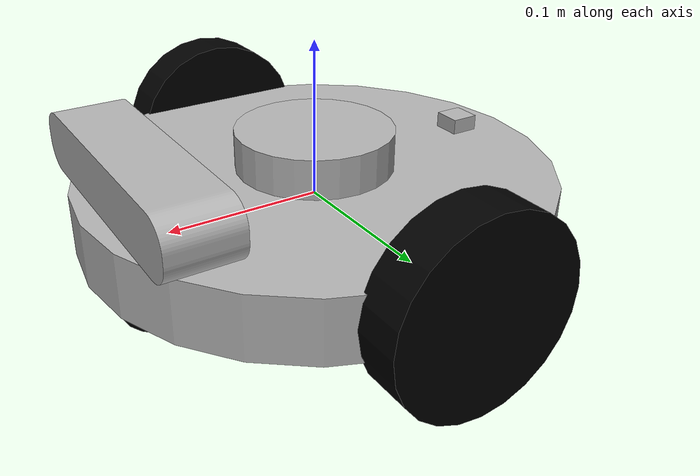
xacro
<?xml version="1.0"?>
<robot name="diff_robot" xmlns:xacro="http://ros.org/wiki/xacro">
<xacro:include filename="$(find diffdrive_description)/urdf/diff_drive_macro.xacro" />
<xacro:include filename="$(find diffdrive_description)/urdf/materials.xacro" />
<xacro:include filename="$(find diffdrive_description)/urdf/diff_drive.ros2control" />

    <xacro:property name="base_radius" value="0.15" />
    <xacro:property name="passive_wheel_height" value="0.04" />
    <xacro:property name="passive_wheel_radius" value="0.02" />
    <xacro:property name="passive_wheel_mass" value="0.5" />
    <xacro:property name="wheel_radius" value="0.06" />
    <xacro:property name="wheel_height" value="0.03" />
    <xacro:property name="wheel_mass" value="2.5" />
    <xacro:property name="body_color" value="Gazebo/Red" />
    <xacro:property name="wheel_color" value="Gazebo/Yellow" />
    <xacro:property name="sensor_color" value="Gazebo/Black" />

	<link name="base_link">
		<inertial>
				<inertia ixx="1.0" ixy="0.0" ixz="0.0" iyy="1.0" iyz="0.0" izz="1.0"/>
			<mass value="5" />
			<origin xyz="0 0 0" />
			<cylinder_inertia  m="5" r="${base_radius}" h="0.04" />
		</inertial>
		<visual>
			<origin xyz="0 0 0" rpy="0 0 0" />
			<geometry>
				<cylinder length="0.04" radius="${base_radius}" />
			</geometry>
			<material name="silver" />
		</visual>
		<collision>
			<origin xyz="0 0 0" rpy="0 0 0 " />
			<geometry>
				<cylinder length="0.04" radius="${base_radius}" />
			</geometry>
		</collision>
	</link>

	<xacro:passive_wheel_joint name="passive_wheel_front_joint"
		parent="base_link"
		child="passive_wheel_front_link">
		<origin xyz="0.115 0 -0.04" rpy="0 0 0"/>
	</xacro:passive_wheel_joint>

	<xacro:passive_wheel_link name="passive_wheel_front_link">
			<origin xyz="0 0 0" rpy="0 0 0" />
	</xacro:passive_wheel_link>

	<xacro:passive_wheel_joint
		name="passive_wheel_back_joint"
		parent="base_link"
		child="passive_wheel_back_link">
		<origin xyz="-0.115 0.0 -0.04" rpy="0 0 0"/>
	</xacro:passive_wheel_joint>

	<xacro:passive_wheel_link
		name="passive_wheel_back_link">
			<origin xyz="0 0 0 " rpy="0 0 0" />
	</xacro:passive_wheel_link>

	<xacro:wheel side="right" parent="base_link" translateX="0" translateY="-${base_radius}" />
	<xacro:wheel side="left" parent="base_link" translateX="0" translateY="${base_radius}" />

	<link name="lidar_link">
		 <visual>
      <origin xyz="0 0 0" rpy="0 0 0"/>
      <geometry>
			<cylinder radius="0.05" length="0.03" />
      </geometry>
      <material name="silver"/>
    </visual>

    <collision>
      <origin xyz="0 0 0.02" rpy="0 0 0"/>
      <geometry>
			 <cylinder radius="0.05" length="0.03" />
      </geometry>
    </collision>

    <inertial>
      <origin xyz="0 0 0" rpy="0 0 0"/>
      <mass value="1"/>
      <inertia
        ixx="1.0" ixy="0.0" ixz="0.0"
        iyy="1.0" iyz="0.0"
        izz="1.0"/>
      <cylinder_inertia  m="1" r="0.05" h="0.03" />
    </inertial>
	</link>

  <link name="camera_link">
   <visual>
      <origin xyz="0 0 0" rpy="0 0 0"/>
      <geometry>
			 <mesh filename="file://$(find diffdrive_description)/meshes/cam1.stl" scale="1.5 1.5 1.5"/>
      </geometry>
      <material name="silver"/>
    </visual>

    <collision>
      <origin xyz="0 0 0" rpy="0 0 0"/>
      <geometry>
			<box size="0.045 0.18 0.0375" />
      </geometry>
    </collision>

    <inertial>
      <origin xyz="0 0 0" rpy="0 0 0"/>
      <mass value="0.5"/>
      <inertia
        ixx="1.0" ixy="0.0" ixz="0.0"
        iyy="1.0" iyz="0.0"
        izz="1.0"/>
    </inertial>
	</link>

  <link name="imu_link">
   <visual>
      <origin xyz="0 0 0" rpy="0 0 0"/>
      <geometry>
			<box size="0.018 0.018 0.03" />
      </geometry>
      <material name="silver"/>
    </visual>

    <collision>
      <origin xyz="0 0 0" rpy="0 0 0"/>
      <geometry>
			<box size="0.018 0.018 0.03" />
      </geometry>
    </collision>

    <inertial>
      <origin xyz="0 0 0" rpy="0 0 0"/>
      <mass value="0.5"/>
      <inertia
        ixx="1.0" ixy="0.0" ixz="0.0"
        iyy="1.0" iyz="0.0"
        izz="1.0"/>
    </inertial>
	</link>

  <link name="camera_link_optical">
   </link>

	  <joint name='lidar_joint' type='fixed'>
		   <origin xyz="0 0 0.03" rpy="0 0 0"/>
       <parent link="base_link"/>
       <child link="lidar_link"/>
    </joint>

    <joint name='camera_joint' type='fixed'>
       <origin xyz="0.115 0 0.02" rpy="0 0 0"/>
       <parent link="base_link"/>
       <child link="camera_link"/>
    </joint>

    <joint name='imu_joint' type='fixed'>
       <origin xyz="-0.115 0 0.015" rpy="0 0 0"/>
       <parent link="base_link"/>
       <child link="imu_link"/>
    </joint>

    <joint type="fixed" name="camera_optical_joint">
       <origin xyz="0 0 0" rpy="-1.5707 0 -1.5707"/>
       <child link="camera_link_optical"/>
       <parent link="camera_link"/>
    </joint>

<gazebo reference="base_link">
  <material>${body_color}</material>
</gazebo>

<gazebo reference="right_wheel">
  <material>${wheel_color}</material>
</gazebo>

<gazebo reference="left_wheel">
  <material>${wheel_color}</material>
</gazebo>

<gazebo reference="lidar_link">
  <material>${sensor_color}</material>
</gazebo>

<gazebo reference="camera_link">
  <material>${sensor_color}</material>
</gazebo>

<gazebo reference="imu_link">
  <material>${sensor_color}</material>
</gazebo>

   <gazebo>
        <plugin filename="gz_ros2_control-system" name="gz_ros2_control::GazeboSimROS2ControlPlugin">
            <parameters>$(find diffdrive_description)/config/my_robot_controllers.yaml</parameters>
        </plugin>
   </gazebo>

   <gazebo>

        <plugin filename="gz-sim-sensors-system" name="gz::sim::systems::Sensors">
            <render_engine>ogre2</render_engine>
        </plugin>

        <plugin filename="gz-sim-imu-system" name="gz::sim::systems::Imu">
        </plugin>
  </gazebo>

  <gazebo reference="camera_link">
    <sensor name="camera" type="camera">
      <camera>
        <horizontal_fov>1.3962634</horizontal_fov>
        <image>
          <width>640</width>
          <height>480</height>
          <format>R8G8B8</format>
        </image>
        <clip>
          <near>0.1</near>
          <far>15</far>
        </clip>
        <noise>
          <type>gaussian</type>
          <mean>0.0</mean>
          <stddev>0.007</stddev>
        </noise>
        <optical_frame_id>camera_link_optical</optical_frame_id>
        <camera_info_topic>camera/camera_info</camera_info_topic>
      </camera>
      <always_on>1</always_on>
      <update_rate>20</update_rate>
      <visualize>true</visualize>
      <topic>camera/image</topic>
    </sensor>
  </gazebo>
  <gazebo reference="imu_link">
    <sensor name="imu" type="imu">
      <always_on>1</always_on>
      <update_rate>50</update_rate>
      <visualize>true</visualize>
      <topic>imu</topic>
      <enable_metrics>true</enable_metrics>
      <gz_frame_id>imu_link</gz_frame_id>
    </sensor>
  </gazebo>
  <gazebo reference="lidar_link">
        <sensor name='gpu_lidar' type='gpu_lidar'>
          <pose>0 0 0.2 0 0 0</pose>
          <topic>scan</topic>
          <gz_frame_id>lidar_link</gz_frame_id>
          <update_rate>10</update_rate>
          <lidar>
            <scan>
              <horizontal>
                <samples>640</samples>
                <resolution>1</resolution>
                <min_angle>-1.396263</min_angle>
                <max_angle>1.396263</max_angle>
              </horizontal>
              <vertical>
                <samples>1</samples>
                <resolution>1</resolution>
                <min_angle>0.0</min_angle>
                <max_angle>0.0</max_angle>
              </vertical>
            </scan>
            <range>
              <min>0.08</min>
              <max>10.0</max>
              <resolution>0.01</resolution>
            </range>
          </lidar>
          <visualize>true</visualize>
        </sensor>
 </gazebo>

</robot>

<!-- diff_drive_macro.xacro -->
<robot name="diff_robot" xmlns:xacro="http://www.ros.org/wiki/xacro">

    <xacro:property name="M_PI" value="3.1415926535897931" />
    <!--Material Definition-->
    <material name="Black">
      <color rgba="0.0 0.0 0.0 1.0"/>
    </material>
    <material name="White">
      <color rgba="1.0 1.0 1.0 1.0"/>
    </material>

    <xacro:macro name="cylinder_inertia" params="m r h">
        <inertia  ixx="${m*(3*r*r+h*h)/12}" ixy = "0" ixz = "0"
                iyy="${m*(3*r*r+h*h)/12}" iyz = "0"
                izz="${m*r*r/2}" />
    </xacro:macro>

    <xacro:macro name="passive_wheel_joint" params="name parent child *origin">
      <joint name="${name}" type="fixed" >
        <parent link="${parent}" />
        <child link="${child}" />
        <xacro:insert_block name="origin" />
      </joint>
    </xacro:macro>

    <xacro:macro name="passive_wheel_link" params="name *origin">
        <link name="${name}">
            <visual>
                <xacro:insert_block name="origin" />
                <geometry>
                    <sphere radius="${passive_wheel_radius}" />
                </geometry>
                <material name="Black" />
            </visual>
            <collision>
                <geometry>
                    <sphere radius="${passive_wheel_radius}" />
                </geometry>
                <origin xyz="0 0.02 0" rpy="${M_PI/2} 0 0" />
            </collision>
            <inertial>
                <mass value="${passive_wheel_mass}" />
                    <origin xyz="0 0 0" />
                    <inertia  ixx="0.001" ixy="0.0" ixz="0.0"
                            iyy="0.001" iyz="0.0"
                                izz="0.001" />
            </inertial>
        </link>
    </xacro:macro>

  <xacro:macro name="wheel" params="side parent translateX translateY">
    <link name="${side}_wheel">
      <visual>
        <origin xyz="0 0 0" rpy="${M_PI/2} 0  0 " />
        <geometry>
          <cylinder length="${wheel_height}" radius="${wheel_radius}" />
        </geometry>
              <material name="Black" />
      </visual>
      <collision>
        <origin xyz="0 0 0" rpy="${M_PI/2} 0 0 " />
        <geometry>
          <cylinder length="${wheel_height}" radius="${wheel_radius}" />
        </geometry>
      </collision>
      <inertial>
        <mass value="${wheel_mass}" />
        <origin xyz="0 0 0" />
				<inertia ixx="0.001" ixy="0.0" ixz="0.0"
               iyy="0.001" iyz="0.0"
               izz="0.001" />
      </inertial>
    </link>

    <joint name="${side}_wheel_joint" type="continuous">
      <parent link="${parent}"/>
      <child link="${side}_wheel"/>

        <origin xyz="0 ${translateY} 0" rpy="0 0 0" />
      <axis xyz="0 1 0" rpy="0 0 0" />
      <limit effort="100" velocity="100"/>
      <joint_properties damping="0.0" friction="0.0"/>
    </joint>

  </xacro:macro>
</robot>

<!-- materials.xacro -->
<robot name="rosbot" xmlns:xacro="http://www.ros.org/wiki/xacro" >

 <material name="silver">
   <color rgba="0.700 0.700 0.700 1.000"/>
 </material>

 <material name="red">
   <color rgba="0.5 0.5 0.5 1.0"/>
 </material>

 <material name="blue">
   <color rgba="0.0 0.0 1.0 1.0"/>
 </material>

 <material name="green">
   <color rgba="0.0 1.0 0.0 1.0"/>
 </material>

 <material name="yellow">
   <color rgba="1.0 1.0 0.0 1.0"/>
 </material>

 <material name="black">
   <color rgba="0.0 0.0 0.0 1.0"/>
 </material>

</robot>
